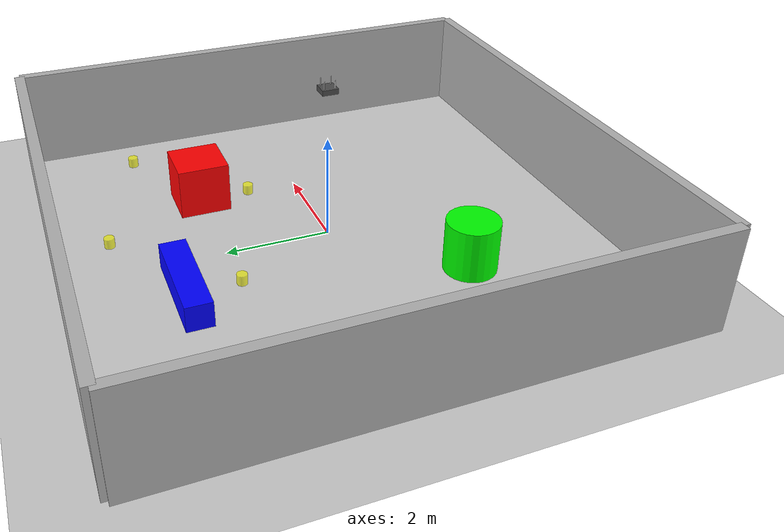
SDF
<?xml version="1.0" ?>
<!--
  Robot Navigation World File

  This world file creates a simple indoor environment for robot
  navigation testing with obstacles and WiFi network simulation.
-->

<sdf version="1.8">
  <world name="robot_navigation_world">

    <!-- World physics configuration -->
    <physics name="1ms" type="ignored">
      <max_step_size>0.001</max_step_size>
      <real_time_factor>1.0</real_time_factor>
      <real_time_update_rate>1000</real_time_update_rate>
    </physics>

    <!-- Essential world plugins -->
    <plugin
      filename="gz-sim-physics-system"
      name="gz::sim::systems::Physics">
    </plugin>

    <plugin
      filename="gz-sim-user-commands-system"
      name="gz::sim::systems::UserCommands">
    </plugin>

    <plugin
      filename="gz-sim-scene-broadcaster-system"
      name="gz::sim::systems::SceneBroadcaster">
    </plugin>

    <!-- NS-3 Integration Plugin -->
    <plugin
      filename="libns3_gazebo_world.so"
      name="ns3_gazebo_world">
      <config_file>config/wifi_config.yaml</config_file>
    </plugin>

    <!-- World lighting -->
    <light type="directional" name="sun">
      <cast_shadows>true</cast_shadows>
      <pose>0 0 10 0 0 0</pose>
      <diffuse>0.8 0.8 0.8 1</diffuse>
      <specular>0.2 0.2 0.2 1</specular>
      <attenuation>
        <range>1000</range>
        <constant>0.9</constant>
        <linear>0.01</linear>
        <quadratic>0.001</quadratic>
      </attenuation>
      <direction>-0.5 0.1 -0.9</direction>
    </light>

    <!-- Ground plane -->
    <model name="ground_plane">
      <static>true</static>
      <link name="link">
        <collision name="collision">
          <geometry>
            <plane>
              <normal>0 0 1</normal>
              <size>20 20</size>
            </plane>
          </geometry>
        </collision>
        <visual name="visual">
          <geometry>
            <plane>
              <normal>0 0 1</normal>
              <size>20 20</size>
            </plane>
          </geometry>
          <material>
            <ambient>0.8 0.8 0.8 1</ambient>
            <diffuse>0.8 0.8 0.8 1</diffuse>
            <specular>0.8 0.8 0.8 1</specular>
          </material>
        </visual>
      </link>
    </model>

    <!-- Room walls -->
    <model name="wall_north">
      <static>true</static>
      <pose>0 5 1 0 0 0</pose>
      <link name="link">
        <collision name="collision">
          <geometry>
            <box>
              <size>10 0.2 2</size>
            </box>
          </geometry>
        </collision>
        <visual name="visual">
          <geometry>
            <box>
              <size>10 0.2 2</size>
            </box>
          </geometry>
          <material>
            <ambient>0.7 0.7 0.7 1</ambient>
            <diffuse>0.7 0.7 0.7 1</diffuse>
          </material>
        </visual>
      </link>
    </model>

    <model name="wall_south">
      <static>true</static>
      <pose>0 -5 1 0 0 0</pose>
      <link name="link">
        <collision name="collision">
          <geometry>
            <box>
              <size>10 0.2 2</size>
            </box>
          </geometry>
        </collision>
        <visual name="visual">
          <geometry>
            <box>
              <size>10 0.2 2</size>
            </box>
          </geometry>
          <material>
            <ambient>0.7 0.7 0.7 1</ambient>
            <diffuse>0.7 0.7 0.7 1</diffuse>
          </material>
        </visual>
      </link>
    </model>

    <model name="wall_east">
      <static>true</static>
      <pose>5 0 1 0 0 0</pose>
      <link name="link">
        <collision name="collision">
          <geometry>
            <box>
              <size>0.2 10 2</size>
            </box>
          </geometry>
        </collision>
        <visual name="visual">
          <geometry>
            <box>
              <size>0.2 10 2</size>
            </box>
          </geometry>
          <material>
            <ambient>0.7 0.7 0.7 1</ambient>
            <diffuse>0.7 0.7 0.7 1</diffuse>
          </material>
        </visual>
      </link>
    </model>

    <model name="wall_west">
      <static>true</static>
      <pose>-5 0 1 0 0 0</pose>
      <link name="link">
        <collision name="collision">
          <geometry>
            <box>
              <size>0.2 10 2</size>
            </box>
          </geometry>
        </collision>
        <visual name="visual">
          <geometry>
            <box>
              <size>0.2 10 2</size>
            </box>
          </geometry>
          <material>
            <ambient>0.7 0.7 0.7 1</ambient>
            <diffuse>0.7 0.7 0.7 1</diffuse>
          </material>
        </visual>
      </link>
    </model>

    <!-- Obstacles -->
    <model name="obstacle_1">
      <static>true</static>
      <pose>2 2 0.5 0 0 0</pose>
      <link name="link">
        <collision name="collision">
          <geometry>
            <box>
              <size>1 1 1</size>
            </box>
          </geometry>
        </collision>
        <visual name="visual">
          <geometry>
            <box>
              <size>1 1 1</size>
            </box>
          </geometry>
          <material>
            <ambient>1.0 0.0 0.0 1</ambient>
            <diffuse>1.0 0.0 0.0 1</diffuse>
          </material>
        </visual>
      </link>
    </model>

    <model name="obstacle_2">
      <static>true</static>
      <pose>-2 -2 0.5 0 0 0</pose>
      <link name="link">
        <collision name="collision">
          <geometry>
            <cylinder>
              <radius>0.5</radius>
              <length>1</length>
            </cylinder>
          </geometry>
        </collision>
        <visual name="visual">
          <geometry>
            <cylinder>
              <radius>0.5</radius>
              <length>1</length>
            </cylinder>
          </geometry>
          <material>
            <ambient>0.0 1.0 0.0 1</ambient>
            <diffuse>0.0 1.0 0.0 1</diffuse>
          </material>
        </visual>
      </link>
    </model>

    <model name="obstacle_3">
      <static>true</static>
      <pose>-1 3 0.25 0 0 0</pose>
      <link name="link">
        <collision name="collision">
          <geometry>
            <box>
              <size>2 0.5 0.5</size>
            </box>
          </geometry>
        </collision>
        <visual name="visual">
          <geometry>
            <box>
              <size>2 0.5 0.5</size>
            </box>
          </geometry>
          <material>
            <ambient>0.0 0.0 1.0 1</ambient>
            <diffuse>0.0 0.0 1.0 1</diffuse>
          </material>
        </visual>
      </link>
    </model>

    <!-- WiFi Access Point (Base Station) -->
    <model name="wifi_access_point">
      <pose>0 0 3 0 0 0</pose>
      <static>true</static>

      <link name="base_link">
        <!-- AP visual representation -->
        <visual name="ap_visual">
          <geometry>
            <box>
              <size>0.3 0.3 0.1</size>
            </box>
          </geometry>
          <material>
            <ambient>0.2 0.2 0.2 1</ambient>
            <diffuse>0.3 0.3 0.3 1</diffuse>
          </material>
        </visual>

        <!-- WiFi antenna array -->
        <visual name="antenna1">
          <pose>-0.1 -0.1 0.1 0 0 0</pose>
          <geometry>
            <cylinder>
              <radius>0.01</radius>
              <length>0.2</length>
            </cylinder>
          </geometry>
          <material>
            <ambient>0.8 0.8 0.8 1</ambient>
            <diffuse>0.9 0.9 0.9 1</diffuse>
          </material>
        </visual>

        <visual name="antenna2">
          <pose>0.1 -0.1 0.1 0 0 0</pose>
          <geometry>
            <cylinder>
              <radius>0.01</radius>
              <length>0.2</length>
            </cylinder>
          </geometry>
          <material>
            <ambient>0.8 0.8 0.8 1</ambient>
            <diffuse>0.9 0.9 0.9 1</diffuse>
          </material>
        </visual>

        <visual name="antenna3">
          <pose>-0.1 0.1 0.1 0 0 0</pose>
          <geometry>
            <cylinder>
              <radius>0.01</radius>
              <length>0.2</length>
            </cylinder>
          </geometry>
          <material>
            <ambient>0.8 0.8 0.8 1</ambient>
            <diffuse>0.9 0.9 0.9 1</diffuse>
          </material>
        </visual>

        <visual name="antenna4">
          <pose>0.1 0.1 0.1 0 0 0</pose>
          <geometry>
            <cylinder>
              <radius>0.01</radius>
              <length>0.2</length>
            </cylinder>
          </geometry>
          <material>
            <ambient>0.8 0.8 0.8 1</ambient>
            <diffuse>0.9 0.9 0.9 1</diffuse>
          </material>
        </visual>
      </link>

      <!-- NS-3 WiFi access point plugin -->
      <plugin
        filename="libns3_gazebo_node.so"
        name="ns3_gazebo_node">
        <node_id>0</node_id>
        <node_type>wifi_access_point</node_type>
        <ip_address>10.1.1.1</ip_address>
        <netmask>255.255.255.0</netmask>
        <ssid>robot_network</ssid>
        <channel>6</channel>
      </plugin>
    </model>

    <!-- Goal markers -->
    <model name="goal_marker_a">
      <pose>2 1 0.1 0 0 0</pose>
      <static>true</static>
      <link name="link">
        <visual name="visual">
          <geometry>
            <cylinder>
              <radius>0.1</radius>
              <length>0.2</length>
            </cylinder>
          </geometry>
          <material>
            <ambient>1.0 1.0 0.0 0.7</ambient>
            <diffuse>1.0 1.0 0.0 0.7</diffuse>
          </material>
        </visual>
      </link>
    </model>

    <model name="goal_marker_b">
      <pose>4 3 0.1 0 0 0</pose>
      <static>true</static>
      <link name="link">
        <visual name="visual">
          <geometry>
            <cylinder>
              <radius>0.1</radius>
              <length>0.2</length>
            </cylinder>
          </geometry>
          <material>
            <ambient>1.0 1.0 0.0 0.7</ambient>
            <diffuse>1.0 1.0 0.0 0.7</diffuse>
          </material>
        </visual>
      </link>
    </model>

    <model name="goal_marker_c">
      <pose>1 4 0.1 0 0 0</pose>
      <static>true</static>
      <link name="link">
        <visual name="visual">
          <geometry>
            <cylinder>
              <radius>0.1</radius>
              <length>0.2</length>
            </cylinder>
          </geometry>
          <material>
            <ambient>1.0 1.0 0.0 0.7</ambient>
            <diffuse>1.0 1.0 0.0 0.7</diffuse>
          </material>
        </visual>
      </link>
    </model>

    <model name="goal_marker_d">
      <pose>-1 2 0.1 0 0 0</pose>
      <static>true</static>
      <link name="link">
        <visual name="visual">
          <geometry>
            <cylinder>
              <radius>0.1</radius>
              <length>0.2</length>
            </cylinder>
          </geometry>
          <material>
            <ambient>1.0 1.0 0.0 0.7</ambient>
            <diffuse>1.0 1.0 0.0 0.7</diffuse>
          </material>
        </visual>
      </link>
    </model>

    <!-- GUI Configuration -->
    <gui fullscreen="0">
      <camera name="user_camera">
        <pose>0 -8 8 0 0.8 1.57</pose>
        <view_controller>orbit</view_controller>
        <projection_type>perspective</projection_type>
      </camera>

      <plugin filename="MinimalScene" name="3D View">
        <gz-gui>
          <title>3D View</title>
          <property type="bool" key="showTitleBar">false</property>
          <property type="string" key="state">docked</property>
        </gz-gui>
        <engine>ogre2</engine>
        <scene>scene</scene>
        <ambient_light>0.4 0.4 0.4</ambient_light>
        <background_color>0.8 0.8 0.8</background_color>
        <camera_pose>0 -8 8 0 0.8 1.57</camera_pose>
      </plugin>

      <plugin filename="WorldControl" name="World control">
        <gz-gui>
          <title>World control</title>
          <property type="bool" key="showTitleBar">false</property>
          <property type="bool" key="resizable">false</property>
          <property type="double" key="height">72</property>
          <property type="double" key="width">121</property>
          <property type="double" key="z">1</property>
          <property type="string" key="state">floating</property>
          <anchors target="3D View">
            <line own="left" target="left"/>
            <line own="bottom" target="bottom"/>
          </anchors>
        </gz-gui>
        <play_pause>true</play_pause>
        <step>true</step>
        <start_paused>true</start_paused>
      </plugin>

      <plugin filename="WorldStats" name="World stats">
        <gz-gui>
          <title>World stats</title>
          <property type="bool" key="showTitleBar">false</property>
          <property type="bool" key="resizable">false</property>
          <property type="double" key="height">110</property>
          <property type="double" key="width">290</property>
          <property type="double" key="z">1</property>
          <property type="string" key="state">floating</property>
          <anchors target="3D View">
            <line own="right" target="right"/>
            <line own="bottom" target="bottom"/>
          </anchors>
        </gz-gui>
        <sim_time>true</sim_time>
        <real_time>true</real_time>
        <real_time_factor>true</real_time_factor>
        <iterations>true</iterations>
      </plugin>

      <plugin filename="EntityTree" name="Entity tree">
        <gz-gui>
          <property type="bool" key="showTitleBar">false</property>
          <property type="string" key="state">docked_collapsed</property>
        </gz-gui>
      </plugin>
    </gui>

  </world>
</sdf>
